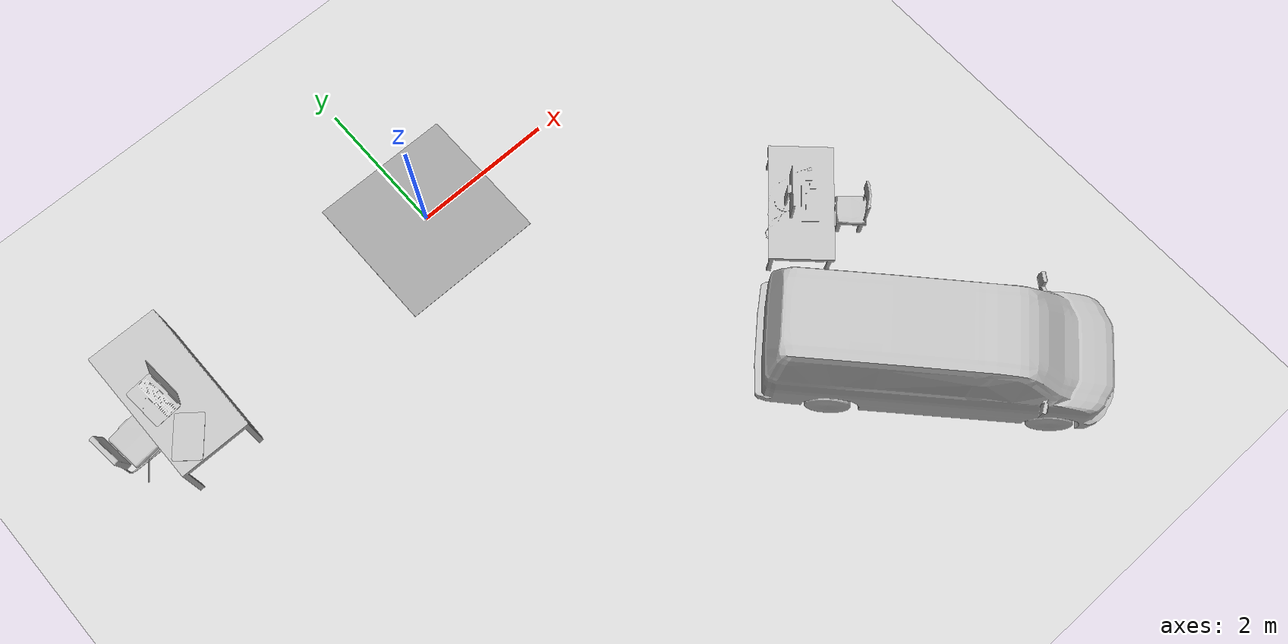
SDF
<sdf version="1.6">
 <world name="default">
  <plugin name="gimbal_joint_controller" filename="libgazebo_ros_joint_pose_trajectory.so">
   <ros><namespace>/gimbal</namespace></ros>
   <update_rate>50</update_rate>
  </plugin>
  <physics type="ode">
   <ode>
    <solver><type>quick</type><iters>100</iters><sor>1.0</sor></solver>
    <constraints>
     <cfm>0.0</cfm>
     <erp>0.2</erp>
     <contact_max_correcting_vel>0.1</contact_max_correcting_vel>
     <contact_surface_layer>0.0</contact_surface_layer>
    </constraints>
   </ode>
   <real_time_update_rate>-1</real_time_update_rate>
  </physics>
  <gravity>0 0 -9.8</gravity>
  <include><uri>model://sun</uri></include>
  <model name="ground_plane">
   <static>true</static>
   <link name="link">
    <collision name="collision">
     <geometry><plane><normal>0 0 1</normal><size>5000 5000</size></plane></geometry>
     <surface><friction><ode><mu>100</mu><mu2>50</mu2></ode></friction></surface>
    </collision>
    <visual name="runway">
     <pose>000 0 0.005 0 0 0</pose>
     <cast_shadows>false</cast_shadows>
     <geometry><plane><normal>0 0 1</normal><size>1829 45</size></plane></geometry>
     <material>
      <script><uri>file://media/materials/scripts/gazebo.material</uri><name>Gazebo/Runway</name></script>
     </material>
    </visual>
    <visual name="grass">
     <pose>0 0 -0.1 0 0 0</pose>
     <cast_shadows>false</cast_shadows>
     <geometry><plane><normal>0 0 1</normal><size>5000 5000</size></plane></geometry>
     <material>
      <script><uri>file://media/materials/scripts/gazebo.material</uri><name>Gazebo/Grass</name></script>
     </material>
    </visual>
   </link>
  </model>
  <include><uri>model://hacker_van</uri><pose>4.34581 -6.72978 0.05 0 -0 0.7586</pose></include>
  <include><uri>model://hacker_desk</uri><pose>3.73953 -3.3219 0.001958 0 0 -0.756161</pose></include>
  <include><uri>model://gcs_table</uri><pose>-4 0 0 0 -0 0</pose></include>
  <include><uri>model://gcs_chair</uri><pose>-4.41943 -0.415139 0 0 -0 1.68293</pose></include>
  <include><uri>model://laptop</uri><pose>-4.04083 -0.118429 0.809145 0 0 -1.90525</pose></include>
  <model name="launch_pad">
   <static>true</static>
   <pose>0 0 0.01 0 0 0</pose>
   <link name="base">
    <visual name="visual">
     <geometry><box><size>2 2 0.01</size></box></geometry>
     <material>
      <script><uri>file://media/materials/scripts/gazebo.material</uri><name>Gazebo/Grey</name></script>
      <ambient>1 1 1 0.5</ambient>
     </material>
    </visual>
   </link>
  </model>
 </world>
</sdf>

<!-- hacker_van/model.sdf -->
<sdf version="1.6">
  <model name="hacker_van">
    <static>true</static>
    <link name="base_link">
      <collision name="base_collision">
        <geometry>
          <mesh>
            <scale>1 1 1</scale>
            <uri>model://hacker_van/meshes/van.dae</uri>
          </mesh>
        </geometry>
        <surface>
          <contact>
            <ode/>
          </contact>
          <bounce/>
          <friction>
            <ode>
              <mu>1.0</mu>
              <mu2>1.0</mu2>
            </ode>
          </friction>
        </surface>
      </collision>
      <visual name="base_visual">
        <geometry>
          <mesh>
            <scale>1 1 1</scale>
            <uri>model://hacker_van/meshes/van.dae</uri>
          </mesh>
        </geometry>
      </visual>
    </link>
  </model>
</sdf>

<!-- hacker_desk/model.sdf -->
<sdf version="1.6">
  <model name="hacker_desk">
    <static>true</static>
    <link name="base_link">
      <collision name="base_collision">
        <geometry>
          <mesh>
            <scale>1 1 1</scale>
            <uri>model://hacker_desk/meshes/hacker_desk.dae</uri>
          </mesh>
        </geometry>
        <surface>
          <contact>
            <ode/>
          </contact>
          <bounce/>
          <friction>
            <ode>
              <mu>1.0</mu>
              <mu2>1.0</mu2>
            </ode>
          </friction>
        </surface>
      </collision>
      <visual name="base_visual">
        <geometry>
          <mesh>
            <scale>1 1 1</scale>
            <uri>model://hacker_desk/meshes/hacker_desk.dae</uri>
          </mesh>
        </geometry>
      </visual>
    </link>
  </model>
</sdf>

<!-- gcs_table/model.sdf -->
<sdf version="1.6">
  <model name="gcs_table">
    <static>true</static>
    <link name="base_link">
      <collision name="base_collision">
        <geometry>
          <mesh>
            <scale>1 1 1</scale>
            <uri>model://gcs_table/meshes/gcs_table.dae</uri>
          </mesh>
        </geometry>
        <surface>
          <contact>
            <ode/>
          </contact>
          <bounce/>
          <friction>
            <ode>
              <mu>1.0</mu>
              <mu2>1.0</mu2>
            </ode>
          </friction>
        </surface>
      </collision>
      <visual name="base_visual">
        <geometry>
          <mesh>
            <scale>1 1 1</scale>
            <uri>model://gcs_table/meshes/gcs_table.dae</uri>
          </mesh>
        </geometry>
      </visual>
    </link>
  </model>
</sdf>

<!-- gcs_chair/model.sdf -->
<sdf version="1.6">
  <model name="gcs_chair">
    <static>true</static>
    <link name="base_link">
      <collision name="base_collision">
        <geometry>
          <mesh>
            <scale>1 1 1</scale>
            <uri>model://gcs_chair/meshes/gcs_chair.dae</uri>
          </mesh>
        </geometry>
        <surface>
          <contact>
            <ode/>
          </contact>
          <bounce/>
          <friction>
            <ode>
              <mu>1.0</mu>
              <mu2>1.0</mu2>
            </ode>
          </friction>
        </surface>
      </collision>
      <visual name="base_visual">
        <geometry>
          <mesh>
            <scale>1 1 1</scale>
            <uri>model://gcs_chair/meshes/gcs_chair.dae</uri>
          </mesh>
        </geometry>
      </visual>
    </link>
  </model>
</sdf>

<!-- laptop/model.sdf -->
<sdf version="1.6">
  <model name="laptop">
    <static>true</static>
    <link name="base_link">
      <collision name="base_collision">
        <geometry>
          <mesh>
            <scale>1 1 1</scale>
            <uri>model://laptop/meshes/laptop.dae</uri>
          </mesh>
        </geometry>
        <surface>
          <contact>
            <ode/>
          </contact>
          <bounce/>
          <friction>
            <ode>
              <mu>1.0</mu>
              <mu2>1.0</mu2>
            </ode>
          </friction>
        </surface>
      </collision>
      <visual name="base_visual">
        <geometry>
          <mesh>
            <scale>1 1 1</scale>
            <uri>model://laptop/meshes/laptop.dae</uri>
          </mesh>
        </geometry>
      </visual>
    </link>
  </model>
</sdf>
